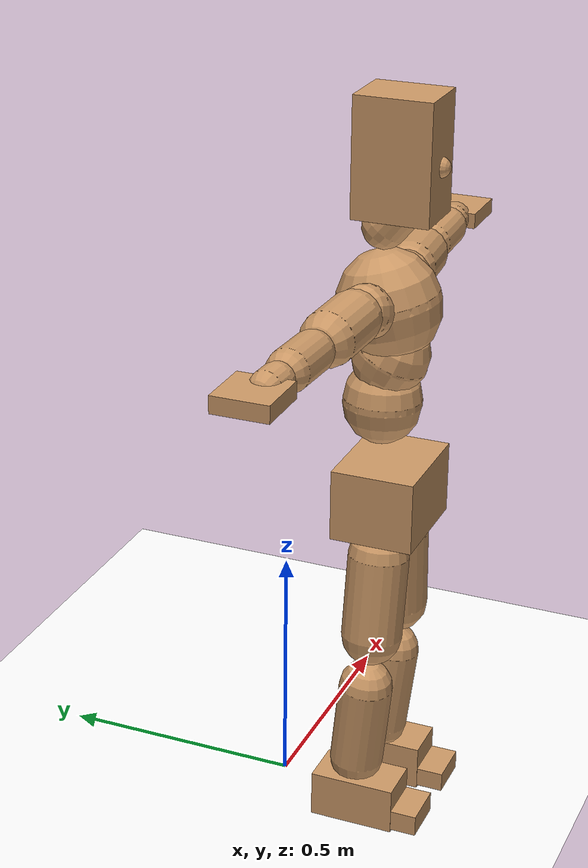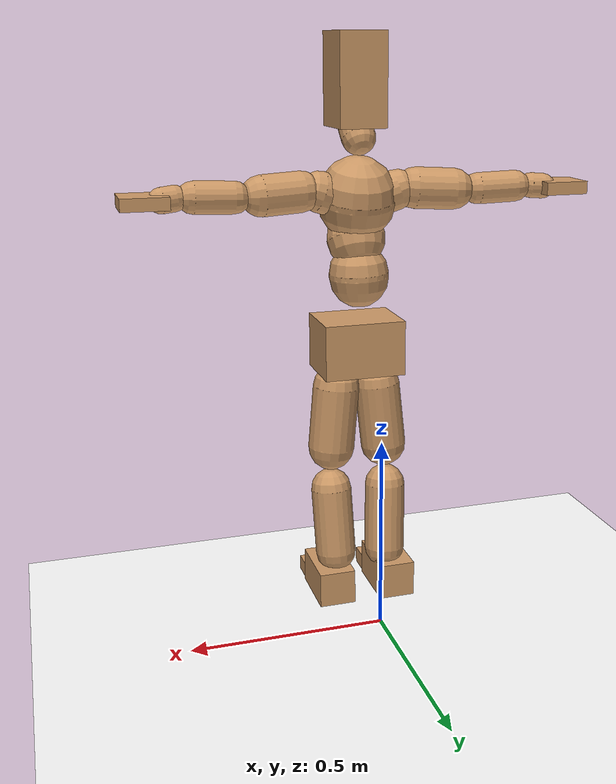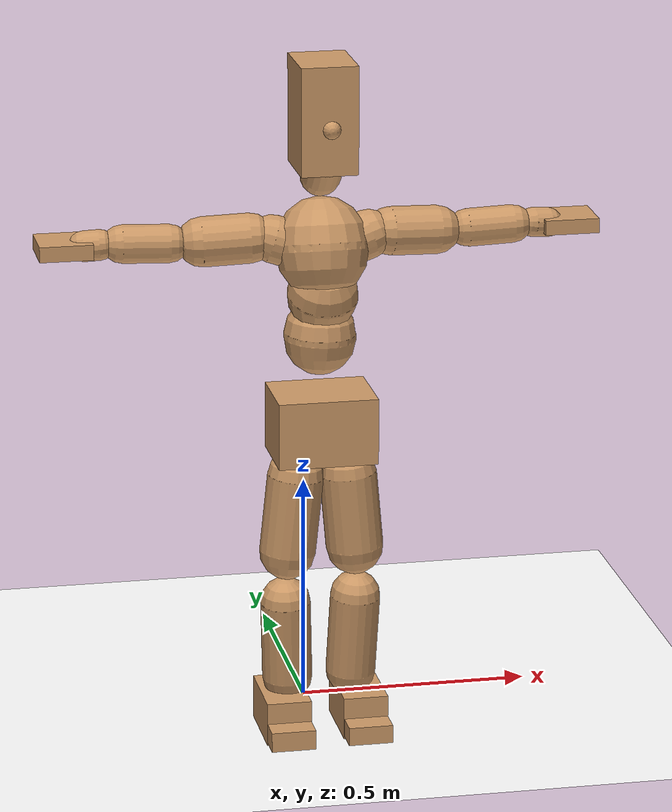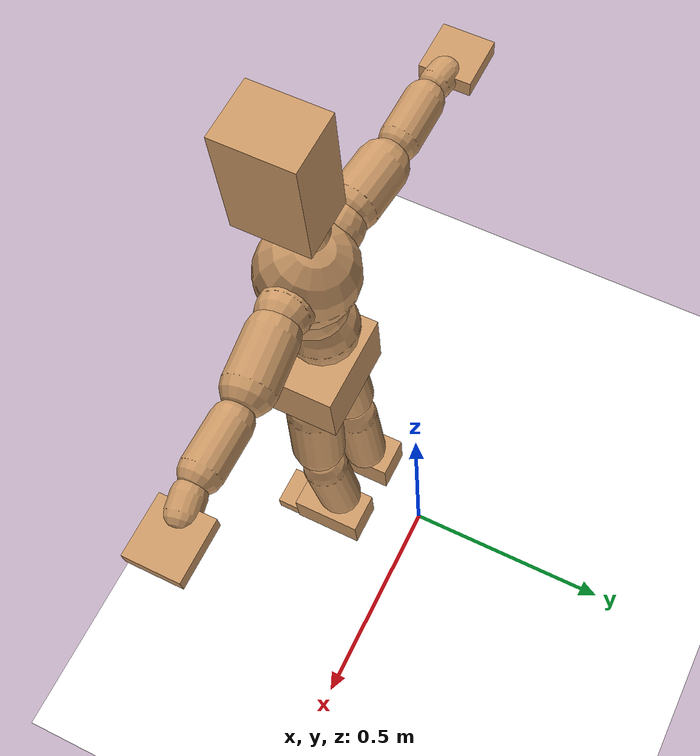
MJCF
<mujoco model="humanoid">
  <option integrator="implicitfast" />

  <visual>
    <global offwidth="1280" offheight="960" />
    <headlight active="1" ambient="0.34 0.34 0.34" diffuse="0.5 0.5 0.5" />
  </visual>

  <default>
    <joint damping="2" stiffness="2" armature="0.01" limited="true" solimplimit="0 .99 .01" />
    <geom condim="1" friction="0.7 0.005 0.0001" solimp=".99 .99 .003" solref="0.015 1" margin="0.001" rgba="0.8 0.6 .4 1" />
    <default class="smplcontact">
      <geom condim="3" friction="1. 0.005 0.0001" solref="0.015 1" solimp="0.98 0.98 0.001" priority="1" />
    </default>
    <default class="stiff_medium">
      <joint stiffness="10" />
    </default>
    <default class="stiff_medium_higher">
      <joint stiffness="50" />
    </default>
    <default class="stiff_high">
      <joint stiffness="100" />
    </default>
  </default>

  <asset>
    <texture type="skybox" builtin="gradient" rgb1="0.99 0.99 0.99" rgb2="0.608 0.828 0.892" width="100" />
    <texture builtin="flat" height="1278" mark="cross" markrgb="1 1 1" name="texgeom" random="0.01" rgb1="0.8 0.6 0.4" rgb2="0.8 0.6 0.4" type="cube" width="127" />
    <texture name="texplane" type="2d" builtin="checker" markrgb="1 1 1" rgb1="0.756 0.772 0.76" rgb2="0.6 0.6 0.6" width="100" height="100" />
    <material name="MatPlane" reflectance="0.5" texture="texplane" texrepeat="1 1" texuniform="true" />
    <material name="geom" texture="texgeom" texuniform="true" />
  </asset>

  <worldbody>
    <light name="tracking_light" pos="0 0 7" dir="0 0 -1" directional="true" cutoff="100" exponent="1" diffuse="1 1 1" specular="0.1 0.1 0.1" mode="trackcom" />
    <camera name="back" pos="0 3 2.4" xyaxes="-1 0 0 0 -1 2" mode="trackcom" />
    <camera name="side" pos="-3 0 2.4" xyaxes="0 -1 0 1 0 2" mode="trackcom" />
    <camera name="front_side" pos="-2.8 -2.8 0.8" xyaxes="0.5 -0.5 0 0.1 0.1 1" mode="trackcom" />
    <geom condim="3" name="floor" pos="0 0 0" rgba="1 1 1 1" size="100 100 .2" type="plane" material="MatPlane" />
    <body name="Pelvis" pos="-0.0018 -0.2233 0.714475" euler="90 0 0">
      <site name="Pelvis" size="0.01" />
      <freejoint name="Pelvis" />
      <geom type="box" pos="-0.0000 -0.0121 -0.0055" size="0.1069 0.0722 0.083" quat="1.0000 0.0000 0.0000 0.0000" density="3165.830099" name="Pelvis" />
      <body name="L_Hip" pos="0.052125 -0.06855 -0.0051">
        <joint name="L_Hip_x" type="hinge" pos="0 0 0" axis="1 0 0" stiffness="6.246094795918367" range="-160.0 22.92" class="stiff_medium" damping="8.291075045961078" armature="0.004891370984683404"/>
        <joint name="L_Hip_y" type="hinge" pos="0 0 0" axis="0 1 0" stiffness="6.283432346938776" range="-70.0 70.0" class="stiff_medium" damping="6.622206330553068" armature="0.006979245460609147"/>
        <joint name="L_Hip_z" type="hinge" pos="0 0 0" axis="0 0 1" stiffness="6.280236020408163" range="-28.65 90.0" class="stiff_medium" damping="5.540637852842338" armature="0.004888139190404855"/>
        <geom type="capsule" density="2040.816327" fromto="0.005175 -0.05625 -0.000675 0.02055 -0.22515 -0.0027" size="0.0615" name="L_Hip" />
        <body name="L_Knee" pos="0.025725 -0.2814 -0.003375">
          <joint name="L_Knee_x" type="hinge" pos="0 0 0" axis="1 0 0" range="-5.16 171.89" damping="4.62915338976834" armature="0.005182973512521489" stiffness="1.292034693877551"/>
          <joint name="L_Knee_y" type="hinge" pos="0 0 0" axis="0 1 0" range="-4.58 6.88" damping="5.46988473458819" armature="0.007381715461698141" stiffness="1.2666279591836735"/>
          <joint name="L_Knee_z" type="hinge" pos="0 0 0" axis="0 0 1" range="-6.88 4.58" damping="4.641672627872139" armature="0.005166231774225995" stiffness="1.3032422448979593"/>
          <geom type="capsule" density="1234.567901" fromto="-0.002025 -0.0597 -0.006525 -0.008175 -0.2388 -0.02625" size="0.0541" name="L_Knee" />
          <body name="L_Ankle" pos="-0.0102 -0.2985 -0.032775">
            <joint name="L_Ankle_x" type="hinge" pos="0 0 0" axis="1 0 0" range="-45.84 45.84" class="stiff_medium" damping="4.38526834577956" armature="0.007122436468331925" stiffness="7.5"/>
            <joint name="L_Ankle_y" type="hinge" pos="0 0 0" axis="0 1 0" range="-74.48 22.92" class="stiff_medium" damping="2.2090505910878844" armature="0.007229488168867751" stiffness="7.5"/>
            <joint name="L_Ankle_z" type="hinge" pos="0 0 0" axis="0 0 1" range="-4.58 4.58" class="stiff_medium" damping="4.627293284407394" armature="0.007930312274045103" stiffness="7.5"/>
            <geom type="box" pos="0.017475 -0.017925 0.01815" size="0.0483 0.0464 0.085" quat="1.0000 0.0000 0.0000 0.0000" density="449.071558" name="L_Ankle" class="smplcontact" />
            <body name="L_Toe" pos="0.0198 -0.04185 0.089475">
              <joint name="L_Toe_x" type="hinge" pos="0 0 0" axis="1 0 0" range="-91.67 22.92" armature="0.008336677887503377" damping="1.5814560905225958" stiffness="1.5"/>
              <joint name="L_Toe_y" type="hinge" pos="0 0 0" axis="0 1 0" range="-4.58 4.58" armature="0.008828055290798229" damping="1.6273956455759209" stiffness="1.5"/>
              <joint name="L_Toe_z" type="hinge" pos="0 0 0" axis="0 0 1" range="-4.58 4.58" armature="0.009821593951991977" damping="1.716530857746983" stiffness="1.5"/>
              <geom type="box" pos="-0.00225 0.004125 0.0186" size="0.0478 0.02 0.0496" quat="1.0000 0.0000 0.0000 0.0000" density="423.206892" name="L_Toe" class="smplcontact" />
            </body>
          </body>
        </body>
      </body>
      <body name="R_Hip" pos="-0.050775 -0.067875 -0.003225">
        <joint name="R_Hip_x" type="hinge" pos="0 0 0" axis="1 0 0" stiffness="6.246094795918367" range="-160.0 22.92" class="stiff_medium" damping="8.291075045961078" armature="0.004891370984683404"/>
        <joint name="R_Hip_y" type="hinge" pos="0 0 0" axis="0 1 0" stiffness="6.283432346938776" range="-70.0 70.0" class="stiff_medium" damping="6.622206330553068" armature="0.006979245460609147"/>
        <joint name="R_Hip_z" type="hinge" pos="0 0 0" axis="0 0 1" stiffness="6.280236020408163" range="-90.0 28.65" class="stiff_medium" damping="5.540637852842338" armature="0.004888139190404855"/>
        <geom type="capsule" density="2040.816327" fromto="-0.005775 -0.057375 -0.00135 -0.02295 -0.229575 -0.005325" size="0.0606" name="R_Hip" />
        <body name="R_Knee" pos="-0.028725 -0.28695 -0.006675">
          <joint name="R_Knee_x" type="hinge" pos="0 0 0" axis="1 0 0" range="-5.16 171.89" damping="4.62915338976834" armature="0.005182973512521489" stiffness="1.292034693877551"/>
          <joint name="R_Knee_y" type="hinge" pos="0 0 0" axis="0 1 0" range="-6.88 4.58" damping="5.46988473458819" armature="0.007381715461698141" stiffness="1.2666279591836735"/>
          <joint name="R_Knee_z" type="hinge" pos="0 0 0" axis="0 0 1" range="-4.58 6.88" damping="4.641672627872139" armature="0.005166231774225995" stiffness="1.3032422448979593"/>
          <geom type="capsule" density="1234.567901" fromto="0.0024 -0.059775 -0.006375 0.00945 -0.239025 -0.02535" size="0.0541" name="R_Knee" />
          <body name="R_Ankle" pos="0.01185 -0.2988 -0.031725">
            <joint name="R_Ankle_x" type="hinge" pos="0 0 0" axis="1 0 0" range="-45.84 45.84" class="stiff_medium" damping="4.38526834577956" armature="0.007122436468331925" stiffness="7.5"/>
            <joint name="R_Ankle_y" type="hinge" pos="0 0 0" axis="0 1 0" range="-22.92 74.48" class="stiff_medium" damping="2.2090505910878844" armature="0.007229488168867751" stiffness="7.5"/>
            <joint name="R_Ankle_z" type="hinge" pos="0 0 0" axis="0 0 1" range="-4.58 4.58" class="stiff_medium" damping="4.627293284407394" armature="0.007930312274045103" stiffness="7.5"/>
            <geom type="box" pos="-0.0159 -0.01305 0.0192" size="0.0483 0.0478 0.0865" quat="1.0000 0.0000 0.0000 0.0000" density="434.700981" name="R_Ankle" class="smplcontact" />
            <body name="R_Toe" pos="-0.01905 -0.036075 0.092475">
              <joint name="R_Toe_x" type="hinge" pos="0 0 0" axis="1 0 0" range="-91.67 22.92" armature="0.008336677887503377" damping="1.5814560905225958" stiffness="1.5"/>
              <joint name="R_Toe_y" type="hinge" pos="0 0 0" axis="0 1 0" range="-4.58 4.58" armature="0.008828055290798229" damping="1.6273956455759209" stiffness="1.5"/>
              <joint name="R_Toe_z" type="hinge" pos="0 0 0" axis="0 0 1" range="-4.58 4.58" armature="0.009821593951991977" damping="1.716530857746983" stiffness="1.5"/>
              <geom type="box" pos="0.00315 0.003375 0.017025" size="0.0479 0.0216 0.0493" quat="1.0000 0.0000 0.0000 0.0000" density="407.384095" name="R_Toe" class="smplcontact" />
            </body>
          </body>
        </body>
      </body>
      <body name="Torso" pos="-0.0025 0.109 -0.0267">
        <joint name="Torso_x" type="hinge" pos="0 0 0" axis="1 0 0" range="-25.78 57.3" class="stiff_medium" damping="13.296564125699913" armature="0.008717287887859698" stiffness="9.01394612244898"/>
        <joint name="Torso_y" type="hinge" pos="0 0 0" axis="0 1 0" range="-57.3 57.3" class="stiff_high" damping="11.857975578739207" armature="0.003844721181114158" stiffness="91.43158775510203"/>
        <joint name="Torso_z" type="hinge" pos="0 0 0" axis="0 0 1" range="-34.38 34.38" class="stiff_high" damping="16.19322021929785" armature="0.007045583299802337" stiffness="93.0442413043478"/>
        <geom type="capsule" density="2040.816327" fromto="0.0025 0.0608 0.0005 0.003 0.0743 0.0006" size="0.0769" name="Torso" />
        <body name="Spine" pos="0.0055 0.1352 0.0011">
          <joint name="Spine_x" type="hinge" pos="0 0 0" axis="1 0 0" stiffness="8.855082083333333" range="-25.78 57.3" class="stiff_medium" damping="13.076797677453992" armature="0.008582774445870413"/>
          <joint name="Spine_y" type="hinge" pos="0 0 0" axis="0 1 0" stiffness="8.966550425531915" range="-57.3 57.3" class="stiff_high" damping="4.670538649446806" armature="0.003801268715520681"/>
          <joint name="Spine_z" type="hinge" pos="0 0 0" axis="0 0 1" stiffness="17.399179999999998" range="-34.38 34.38" class="stiff_high" damping="8.612389288095054" armature="0.005920876830729191"/>
          <geom type="capsule" density="2040.816327" fromto="0.0007 0.0238 0.0114 0.0008 0.0291 0.014" size="0.0755" name="Spine" />
          <body name="Chest" pos="0.0015 0.0529 0.0254">
            <joint name="Chest_x" type="hinge" pos="0 0 0" axis="1 0 0" stiffness="8.445605217391304" range="-25.78 57.3" class="stiff_medium" damping="12.725283601188012" armature="0.00852160981625543"/>
            <joint name="Chest_y" type="hinge" pos="0 0 0" axis="0 1 0" stiffness="7.416513142857141" range="-57.3 57.3" class="stiff_high" damping="4.235867490218071" armature="0.003780114777548562"/>
            <joint name="Chest_z" type="hinge" pos="0 0 0" axis="0 0 1" stiffness="17.461715111111108" range="-34.38 34.38" class="stiff_high" damping="8.26531611861849" armature="0.005433748608980238"/>
            <geom type="capsule" density="2040.816327" fromto="-0.0009 0.0682 -0.0173 -0.001 0.0833 -0.0212" size="0.1002" name="Chest" />
            <body name="Neck" pos="-0.0028 0.2139 -0.0429">
              <joint name="Neck_x" type="hinge" pos="0 0 0" axis="1 0 0" range="-28.65 57.3" class="stiff_medium_higher" damping="10.000000000000002" armature="0.010000000000000005" stiffness="50.0"/>
              <joint name="Neck_y" type="hinge" pos="0 0 0" axis="0 1 0" range="-40.11 40.11" class="stiff_medium_higher" damping="10.0" armature="0.01" stiffness="50.0"/>
              <joint name="Neck_z" type="hinge" pos="0 0 0" axis="0 0 1" range="-40.11 40.11" class="stiff_medium_higher" damping="9.999999999999996" armature="0.009999999999999993" stiffness="50.0"/>
              <geom type="capsule" density="1000" fromto="0.001 0.013 0.0103 0.0041 0.052 0.0411" size="0.0436" name="Neck" />
              <body name="Head" pos="0.0052 0.065 0.0513">
                <joint name="Head_x" type="hinge" pos="0 0 0" axis="1 0 0" range="-28.65 57.3" class="stiff_medium_higher" damping="2.0000000000000053" armature="0.010000000000000054" stiffness="50.0"/>
                <joint name="Head_y" type="hinge" pos="0 0 0" axis="0 1 0" range="-40.11 40.11" class="stiff_medium_higher" damping="2.0" armature="0.01" stiffness="50.0"/>
                <joint name="Head_z" type="hinge" pos="0 0 0" axis="0 0 1" range="-40.11 40.11" class="stiff_medium_higher" damping="2.000000000000006" armature="0.010000000000000064" stiffness="50.0"/>
                <geom type="box" pos="-0.0042 0.0876 -0.0116" size="0.0606 0.1154 0.076" quat="1.0000 0.0000 0.0000 0.0000" density="1018.069894" name="Head" />
                <geom type="capsule" name="nose" size="0.02 0.01" pos="0 0.07 0.05" quat="1 0 0 0" mass="0" contype="0" conaffinity="0" />
              </body>
            </body>
            <body name="L_Thorax" pos="0.052205 0.0806262 -0.0225912">
              <joint name="L_Thorax_x" type="hinge" pos="0 0 0" axis="1 0 0" range="-10.89 4.58" class="stiff_medium_higher" damping="10.75216101934471" armature="0.0054925344912440275" stiffness="26.310478061224497"/>
              <joint name="L_Thorax_y" type="hinge" pos="0 0 0" axis="0 1 0" range="-28.65 17.19" class="stiff_medium_higher" damping="8.656507675839675" armature="0.0035990909186137975" stiffness="26.025712755102038"/>
              <joint name="L_Thorax_z" type="hinge" pos="0 0 0" axis="0 0 1" range="-31.51 40.11" class="stiff_medium_higher" damping="8.654936190408645" armature="0.0035973494554525543" stiffness="26.02885867346939"/>
              <geom type="capsule" density="1000" fromto="0.0120575 0.00404125 -0.0011925 0.04823 0.016165 -0.00470375" size="0.0521" name="L_Thorax" />
              <body name="L_Shoulder" pos="0.0602875 0.0202062 -0.00589625">
                <joint name="L_Shoulder_x" type="hinge" pos="0 0 0" axis="1 0 0" range="-97.4 97.4" class="stiff_medium" damping="3.435570611371462" armature="0.006181474178058814" stiffness="5.3039961224489796"/>
                <joint name="L_Shoulder_y" type="hinge" pos="0 0 0" axis="0 1 0" range="-108.86 80.21" class="stiff_medium" damping="2.619467278569037" armature="0.00364693025105719" stiffness="5.226319999999999"/>
                <joint name="L_Shoulder_z" type="hinge" pos="0 0 0" axis="0 0 1" range="-97.4 85.94" class="stiff_medium" damping="2.6197349169276216" armature="0.0036444798930498406" stiffness="5.230902653061225"/>
                <geom type="capsule" density="1000" fromto="0.0343837 -0.0017225 -0.00364375 0.137601 -0.0067575 -0.014575" size="0.0517" name="L_Shoulder" />
                <body name="L_Elbow" pos="0.171985 -0.00848 -0.0182187">
                  <joint name="L_Elbow_x" type="hinge" pos="0 0 0" axis="1 0 0" range="-17.19 4.58" damping="3.1785577743547226" armature="0.0073936623788689124" stiffness="1.0931772653061227"/>
                  <joint name="L_Elbow_y" type="hinge" pos="0 0 0" axis="0 1 0" range="-180.0 17.19" damping="2.3033030607353275" armature="0.003885042260915372" stiffness="1.0924370204081633"/>
                  <joint name="L_Elbow_z" type="hinge" pos="0 0 0" axis="0 0 1" range="-100.84 4.58" damping="2.3008114328593745" armature="0.0038721783452337235" stiffness="1.0936961632653062"/>
                  <geom type="capsule" density="1000" fromto="0.0329925 0.0011925 -0.0001325 0.132102 0.00477 -0.00059625" size="0.0405" name="L_Elbow" />
                  <body name="L_Wrist" pos="0.165095 0.0059625 -0.000795">
                    <joint name="L_Wrist_x" type="hinge" pos="0 0 0" axis="1 0 0" range="-180.0 22.92" armature="0.008001427855743422" damping="1.4109622696560224" stiffness="1.2440370408163264"/>
                    <joint name="L_Wrist_y" type="hinge" pos="0 0 0" axis="0 1 0" range="-17.19 17.19" armature="0.004879471429003469" damping="1.0965644446974518" stiffness="1.2321555714285712"/>
                    <joint name="L_Wrist_z" type="hinge" pos="0 0 0" axis="0 0 1" range="-22.92 22.92" armature="0.004698864868438912" damping="1.0781698402208966" stiffness="1.2369478979591837"/>
                    <geom type="capsule" density="1000" fromto="0.01113 -0.00106 -0.0019875 0.04452 -0.00430625 -0.00795" size="0.0318" name="L_Wrist" class="smplcontact" />
                    <body name="L_Hand" pos="0.05565 -0.0054325 -0.00987125">
                      <joint name="L_Hand_x" type="hinge" pos="0 0 0" axis="1 0 0" range="-17.19 17.19" armature="0.009755552996204151" damping="1.6078618449167985" stiffness="1.3249990612244895"/>
                      <joint name="L_Hand_y" type="hinge" pos="0 0 0" axis="0 1 0" range="-51.57 51.57" armature="0.007043747166286085" damping="1.366232647764046" stiffness="1.3249990408163264"/>
                      <joint name="L_Hand_z" type="hinge" pos="0 0 0" axis="0 0 1" range="-91.67 91.67" armature="0.006320878329522937" damping="1.2942300773617927" stiffness="1.3249989999999998"/>
                      <geom type="box" pos="0.0326612 0.0006625 -0.0038425" size="0.0585 0.0158 0.0538" quat="1.0000 0.0000 0.0000 0.0000" density="400.552564" name="L_Hand" class="smplcontact" />
                    </body>
                  </body>
                </body>
              </body>
            </body>
            <body name="R_Thorax" pos="-0.0541925 0.078705 -0.0255725">
              <joint name="R_Thorax_x" type="hinge" pos="0 0 0" axis="1 0 0" range="-10.89 4.58" class="stiff_medium_higher" damping="10.75216101934471" armature="0.0054925344912440275" stiffness="26.310478061224497"/>
              <joint name="R_Thorax_y" type="hinge" pos="0 0 0" axis="0 1 0" range="-17.19 28.65" class="stiff_medium_higher" damping="8.656507675839675" armature="0.0035990909186137975" stiffness="26.025712755102038"/>
              <joint name="R_Thorax_z" type="hinge" pos="0 0 0" axis="0 0 1" range="-40.11 31.51" class="stiff_medium_higher" damping="8.654936190408645" armature="0.0035973494554525543" stiffness="26.02885867346939"/>
              <geom type="capsule" density="1000" fromto="-0.01272 0.00430625 -0.0011925 -0.05088 0.017225 -0.00483625" size="0.0511" name="R_Thorax" />
              <body name="R_Shoulder" pos="-0.0636 0.0215975 -0.00602875">
                <joint name="R_Shoulder_x" type="hinge" pos="0 0 0" axis="1 0 0" range="-97.4 97.4" class="stiff_medium" damping="3.435570611371462" armature="0.006181474178058814" stiffness="5.3039961224489796"/>
                <joint name="R_Shoulder_y" type="hinge" pos="0 0 0" axis="0 1 0" range="-80.21 108.86" class="stiff_medium" damping="2.619467278569037" armature="0.00364693025105719" stiffness="5.226319999999999"/>
                <joint name="R_Shoulder_z" type="hinge" pos="0 0 0" axis="0 0 1" range="-85.94 97.4" class="stiff_medium" damping="2.6197349169276216" armature="0.0036444798930498406" stiffness="5.230902653061225"/>
                <geom type="capsule" density="1000" fromto="-0.0335888 -0.00178875 -0.00284875 -0.134488 -0.00708875 -0.0113288" size="0.0531" name="R_Shoulder" />
                <body name="R_Elbow" pos="-0.168076 -0.00881125 -0.0141775">
                  <joint name="R_Elbow_x" type="hinge" pos="0 0 0" axis="1 0 0" range="-17.19 4.58" damping="3.1785577743547226" armature="0.0073936623788689124" stiffness="1.0931772653061227"/>
                  <joint name="R_Elbow_y" type="hinge" pos="0 0 0" axis="0 1 0" range="-17.19 180.0" damping="2.3033030607353275" armature="0.003885042260915372" stiffness="1.0924370204081633"/>
                  <joint name="R_Elbow_z" type="hinge" pos="0 0 0" axis="0 0 1" range="-4.58 100.84" damping="2.3008114328593745" armature="0.0038721783452337235" stiffness="1.0936961632653062"/>
                  <geom type="capsule" density="1000" fromto="-0.0338538 0.00106 -0.00072875 -0.135282 0.0041075 -0.002915" size="0.0408" name="R_Elbow" />
                  <body name="R_Wrist" pos="-0.169136 0.0051675 -0.00371">
                    <joint name="R_Wrist_x" type="hinge" pos="0 0 0" axis="1 0 0" range="-180.0 22.92" armature="0.008001427855743422" damping="1.4109622696560224" stiffness="1.2440370408163264"/>
                    <joint name="R_Wrist_y" type="hinge" pos="0 0 0" axis="0 1 0" range="-17.19 17.19" armature="0.004879471429003469" damping="1.0965644446974518" stiffness="1.2321555714285712"/>
                    <joint name="R_Wrist_z" type="hinge" pos="0 0 0" axis="0 0 1" range="-22.92 22.92" armature="0.004698864868438912" damping="1.0781698402208966" stiffness="1.2369478979591837"/>
                    <geom type="capsule" density="1000" fromto="-0.0111962 -0.000795 -0.00139125 -0.0448512 -0.00324625 -0.00549875" size="0.0326" name="R_Wrist" class="smplcontact" />
                    <body name="R_Hand" pos="-0.0560475 -0.00404125 -0.00682375">
                      <joint name="R_Hand_x" type="hinge" pos="0 0 0" axis="1 0 0" range="-17.19 17.19" armature="0.009755552996204151" damping="1.6078618449167985" stiffness="1.3249990612244895"/>
                      <joint name="R_Hand_y" type="hinge" pos="0 0 0" axis="0 1 0" range="-51.57 51.57" armature="0.007043747166286085" damping="1.366232647764046" stiffness="1.3249990408163264"/>
                      <joint name="R_Hand_z" type="hinge" pos="0 0 0" axis="0 0 1" range="-91.67 91.67" armature="0.006320878329522937" damping="1.2942300773617927" stiffness="1.3249989999999998"/>
                      <geom type="box" pos="-0.0306075 -0.00059625 -0.00523375" size="0.0569 0.0164 0.0546" quat="1.0000 0.0000 0.0000 0.0000" density="403.679611" name="R_Hand" class="smplcontact" />
                    </body>
                  </body>
                </body>
              </body>
            </body>
          </body>
        </body>
      </body>
    </body>
  </worldbody>
  <actuator>
    <general name="L_Hip_x" joint="L_Hip_x" biastype="affine" gainprm="179.46908180691764" biasprm="-134.4938865848036 -112.42970632653059 -1.1054766727948104" ctrllimited="true" ctrlrange="-1 1" forcerange="-224.85941265306118 224.85941265306118" />
    <general name="L_Hip_y" joint="L_Hip_y" biastype="affine" gainprm="138.1798943032993" biasprm="0.0 -113.10178224489796 -1.3244412661106135" ctrllimited="true" ctrlrange="-1 1" forcerange="-226.20356448979592 226.20356448979592" />
    <general name="L_Hip_z" joint="L_Hip_z" biastype="affine" gainprm="117.04788889139031" biasprm="60.52160120932823 -113.04424836734694 -1.1081275705684677" ctrllimited="true" ctrlrange="-1 1" forcerange="-226.08849673469388 226.08849673469388" />
    <general name="L_Knee_x" joint="L_Knee_x" biastype="affine" gainprm="179.66355466802756" biasprm="169.1912141756579 -116.2831224489796 -1.157288347442085" ctrllimited="true" ctrlrange="-1 1" forcerange="-232.5662448979592 232.5662448979592" />
    <general name="L_Knee_y" joint="L_Knee_y" biastype="affine" gainprm="11.400491346869197" biasprm="2.2880567275566452 -113.99651632653062 -1.3674711836470475" ctrllimited="true" ctrlrange="-1 1" forcerange="-227.99303265306125 227.99303265306125" />
    <general name="L_Knee_z" joint="L_Knee_z" biastype="affine" gainprm="11.730044191831292" biasprm="-2.3541973508910967 -117.29180204081634 -1.1604181569680347" ctrllimited="true" ctrlrange="-1 1" forcerange="-234.58360408163267 234.58360408163267" />
    <general name="L_Ankle_x" joint="L_Ankle_x" biastype="affine" gainprm="54.00397771520855" biasprm="0.0 -67.5 -1.4617561152598533" ctrllimited="true" ctrlrange="-1 1" forcerange="-135.0 135.0" />
    <general name="L_Ankle_y" joint="L_Ankle_y" biastype="affine" gainprm="57.37333583618361" biasprm="-30.371346978579332 -67.5 -1.4727003940585897" ctrllimited="true" ctrlrange="-1 1" forcerange="-135.0 135.0" />
    <general name="L_Ankle_z" joint="L_Ankle_z" biastype="affine" gainprm="5.395685382540469" biasprm="0.0 -67.5 -1.5424310948024649" ctrllimited="true" ctrlrange="-1 1" forcerange="-135.0 135.0" />
    <general name="L_Toe_x" joint="L_Toe_x" biastype="affine" gainprm="53.999265326228155" biasprm="-32.39767424014474 -54.0 -0.6325824362090384" ctrllimited="true" ctrlrange="-1 1" forcerange="-108.0 108.0" />
    <general name="L_Toe_y" joint="L_Toe_y" biastype="affine" gainprm="4.3165483060323755" biasprm="0.0 -54.0 -0.6509582582303683" ctrllimited="true" ctrlrange="-1 1" forcerange="-108.0 108.0" />
    <general name="L_Toe_z" joint="L_Toe_z" biastype="affine" gainprm="4.3165483060323755" biasprm="0.0 -54.0 -0.6866123430987933" ctrllimited="true" ctrlrange="-1 1" forcerange="-108.0 108.0" />
    <general name="R_Hip_x" joint="R_Hip_x" biastype="affine" gainprm="179.46908180691764" biasprm="-134.4938865848036 -112.42970632653059 -1.1054766727948104" ctrllimited="true" ctrlrange="-1 1" forcerange="-224.85941265306118 224.85941265306118" />
    <general name="R_Hip_y" joint="R_Hip_y" biastype="affine" gainprm="138.1798943032993" biasprm="0.0 -113.10178224489796 -1.3244412661106135" ctrllimited="true" ctrlrange="-1 1" forcerange="-226.20356448979592 226.20356448979592" />
    <general name="R_Hip_z" joint="R_Hip_z" biastype="affine" gainprm="117.04788889139031" biasprm="-60.52160120932823 -113.04424836734694 -1.1081275705684677" ctrllimited="true" ctrlrange="-1 1" forcerange="-226.08849673469388 226.08849673469388" />
    <general name="R_Knee_x" joint="R_Knee_x" biastype="affine" gainprm="179.66355466802756" biasprm="169.1912141756579 -116.2831224489796 -1.157288347442085" ctrllimited="true" ctrlrange="-1 1" forcerange="-232.5662448979592 232.5662448979592" />
    <general name="R_Knee_y" joint="R_Knee_y" biastype="affine" gainprm="11.400491346869197" biasprm="-2.2880567275566452 -113.99651632653062 -1.3674711836470475" ctrllimited="true" ctrlrange="-1 1" forcerange="-227.99303265306125 227.99303265306125" />
    <general name="R_Knee_z" joint="R_Knee_z" biastype="affine" gainprm="11.730044191831292" biasprm="2.3541973508910967 -117.29180204081634 -1.1604181569680347" ctrllimited="true" ctrlrange="-1 1" forcerange="-234.58360408163267 234.58360408163267" />
    <general name="R_Ankle_x" joint="R_Ankle_x" biastype="affine" gainprm="54.00397771520855" biasprm="0.0 -67.5 -1.4617561152598533" ctrllimited="true" ctrlrange="-1 1" forcerange="-135.0 135.0" />
    <general name="R_Ankle_y" joint="R_Ankle_y" biastype="affine" gainprm="57.37333583618361" biasprm="30.371346978579332 -67.5 -1.4727003940585897" ctrllimited="true" ctrlrange="-1 1" forcerange="-135.0 135.0" />
    <general name="R_Ankle_z" joint="R_Ankle_z" biastype="affine" gainprm="5.395685382540469" biasprm="0.0 -67.5 -1.5424310948024649" ctrllimited="true" ctrlrange="-1 1" forcerange="-135.0 135.0" />
    <general name="R_Toe_x" joint="R_Toe_x" biastype="affine" gainprm="53.999265326228155" biasprm="-32.39767424014474 -54.0 -0.6325824362090384" ctrllimited="true" ctrlrange="-1 1" forcerange="-108.0 108.0" />
    <general name="R_Toe_y" joint="R_Toe_y" biastype="affine" gainprm="4.3165483060323755" biasprm="0.0 -54.0 -0.6509582582303683" ctrllimited="true" ctrlrange="-1 1" forcerange="-108.0 108.0" />
    <general name="R_Toe_z" joint="R_Toe_z" biastype="affine" gainprm="4.3165483060323755" biasprm="0.0 -54.0 -0.6866123430987933" ctrllimited="true" ctrlrange="-1 1" forcerange="-108.0 108.0" />
    <general name="Torso_x" joint="Torso_x" biastype="affine" gainprm="156.84477639727098" biasprm="59.505866057318 -216.33470693877553 -3.5457504335199768" ctrllimited="true" ctrlrange="-1 1" forcerange="-324.5020604081633 324.5020604081633" />
    <general name="Torso_y" joint="Torso_y" biastype="affine" gainprm="219.45197455967397" biasprm="0.0 -219.43581061224486 -2.3715951157478417" ctrllimited="true" ctrlrange="-1 1" forcerange="-329.1537159183673 329.1537159183673" />
    <general name="Torso_z" joint="Torso_z" biastype="affine" gainprm="133.99357690475964" biasprm="0.0 -223.30617913043474 -3.23864404385957" ctrllimited="true" ctrlrange="-1 1" forcerange="-334.9592686956521 334.9592686956521" />
    <general name="Spine_x" joint="Spine_x" biastype="affine" gainprm="154.08050486134445" biasprm="58.457119802955894 -212.52197 -3.4871460473210645" ctrllimited="true" ctrlrange="-1 1" forcerange="-318.782955 318.782955" />
    <general name="Spine_y" joint="Spine_y" biastype="affine" gainprm="215.21306193898633" biasprm="0.0 -215.19721021276595 -2.335269324723403" ctrllimited="true" ctrlrange="-1 1" forcerange="-322.7958153191489 322.7958153191489" />
    <general name="Spine_z" joint="Spine_z" biastype="affine" gainprm="125.28332386438697" biasprm="0.0 -208.79016 -2.870796429365018" ctrllimited="true" ctrlrange="-1 1" forcerange="-313.18523999999996 313.18523999999996" />
    <general name="Chest_x" joint="Chest_x" biastype="affine" gainprm="146.95551136725376" biasprm="55.753944611168 -202.69452521739132 -3.3934089603168034" ctrllimited="true" ctrlrange="-1 1" forcerange="-304.04178782608693 304.04178782608693" />
    <general name="Chest_y" joint="Chest_y" biastype="affine" gainprm="178.00942688507038" biasprm="0.0 -177.9963154285714 -2.1179337451090356" ctrllimited="true" ctrlrange="-1 1" forcerange="-266.9944731428571 266.9944731428571" />
    <general name="Chest_z" joint="Chest_z" biastype="affine" gainprm="125.7336098306353" biasprm="0.0 -209.5405813333333 -2.75510537287283" ctrllimited="true" ctrlrange="-1 1" forcerange="-314.31087199999996 314.31087199999996" />
    <general name="Neck_x" joint="Neck_x" biastype="affine" gainprm="27.00198885760427" biasprm="9.000662952534757 -36.0 -0.8000000000000003" ctrllimited="true" ctrlrange="-1 1" forcerange="-72.0 72.0" />
    <general name="Neck_y" joint="Neck_y" biastype="affine" gainprm="25.20185626709732" biasprm="0.0 -36.0 -0.8" ctrllimited="true" ctrlrange="-1 1" forcerange="-72.0 72.0" />
    <general name="Neck_z" joint="Neck_z" biastype="affine" gainprm="25.20185626709732" biasprm="0.0 -36.0 -0.7999999999999998" ctrllimited="true" ctrlrange="-1 1" forcerange="-72.0 72.0" />
    <general name="Head_x" joint="Head_x" biastype="affine" gainprm="18.001325905069514" biasprm="6.000441968356505 -24.0 -0.8000000000000022" ctrllimited="true" ctrlrange="-1 1" forcerange="-48.0 48.0" />
    <general name="Head_y" joint="Head_y" biastype="affine" gainprm="16.801237511398213" biasprm="0.0 -24.0 -0.8" ctrllimited="true" ctrlrange="-1 1" forcerange="-48.0 48.0" />
    <general name="Head_z" joint="Head_z" biastype="affine" gainprm="16.801237511398213" biasprm="0.0 -24.0 -0.8000000000000025" ctrllimited="true" ctrlrange="-1 1" forcerange="-48.0 48.0" />
    <general name="L_Thorax_x" joint="L_Thorax_x" biastype="affine" gainprm="8.524671780005175" biasprm="-3.4770962464015946 -63.14514734693879 -0.8601728815475769" ctrllimited="true" ctrlrange="-1 1" forcerange="-126.29029469387758 126.29029469387758" />
    <general name="L_Thorax_y" joint="L_Thorax_y" biastype="affine" gainprm="24.98652465153687" biasprm="-6.246631162884218 -62.461710612244886 -0.692520614067174" ctrllimited="true" ctrlrange="-1 1" forcerange="-124.92342122448977 124.92342122448977" />
    <general name="L_Thorax_z" joint="L_Thorax_z" biastype="affine" gainprm="39.04343825747016" biasprm="4.688265414887508 -62.46926081632654 -0.6923948952326916" ctrllimited="true" ctrlrange="-1 1" forcerange="-124.93852163265308 124.93852163265308" />
    <general name="L_Shoulder_x" joint="L_Shoulder_x" biastype="affine" gainprm="43.279353003673734" biasprm="0.0 -25.459181387755102 -0.9161521630323899" ctrllimited="true" ctrlrange="-1 1" forcerange="-50.918362775510204 50.918362775510204" />
    <general name="L_Shoulder_y" joint="L_Shoulder_y" biastype="affine" gainprm="41.39112503423586" biasprm="-6.272045973612193 -25.086336 -0.6985246076184098" ctrllimited="true" ctrlrange="-1 1" forcerange="-50.172672 50.172672" />
    <general name="L_Shoulder_z" joint="L_Shoulder_z" biastype="affine" gainprm="40.171909368365355" biasprm="-2.511018224945282 -25.108332734693878 -0.6985959778473658" ctrllimited="true" ctrlrange="-1 1" forcerange="-50.216665469387756 50.216665469387756" />
    <general name="L_Elbow_x" joint="L_Elbow_x" biastype="affine" gainprm="7.476509558353197" biasprm="-4.330674576519699 -39.35438155102042 -0.5085692438967556" ctrllimited="true" ctrlrange="-1 1" forcerange="-78.70876310204083 78.70876310204083" />
    <general name="L_Elbow_y" joint="L_Elbow_y" biastype="affine" gainprm="67.67545257136767" biasprm="-55.87626367028943 -39.327732734693875 -0.36852848971765245" ctrllimited="true" ctrlrange="-1 1" forcerange="-78.65546546938775 78.65546546938775" />
    <general name="L_Elbow_z" joint="L_Elbow_z" biastype="affine" gainprm="36.22176204255759" biasprm="-33.07443382865295 -39.373061877551024 -0.36812982925749993" ctrllimited="true" ctrlrange="-1 1" forcerange="-78.74612375510205 78.74612375510205" />
    <general name="L_Wrist_x" joint="L_Wrist_x" biastype="affine" gainprm="13.217727298647333" biasprm="-10.231818470685607 -7.464222244897958 -0.564384907862409" ctrllimited="true" ctrlrange="-1 1" forcerange="-14.928444489795917 14.928444489795917" />
    <general name="L_Wrist_y" joint="L_Wrist_y" biastype="affine" gainprm="2.2180434007032876" biasprm="0.0 -7.392933428571427 -0.43862577787898077" ctrllimited="true" ctrlrange="-1 1" forcerange="-14.785866857142855 14.785866857142855" />
    <general name="L_Wrist_z" joint="L_Wrist_z" biastype="affine" gainprm="2.9688936318338586" biasprm="0.0 -7.421687387755102 -0.43126793608835867" ctrllimited="true" ctrlrange="-1 1" forcerange="-14.843374775510204 14.843374775510204" />
    <general name="L_Hand_x" joint="L_Hand_x" biastype="affine" gainprm="2.38517399250132" biasprm="0.0 -7.949994367346937 -0.6431447379667194" ctrllimited="true" ctrlrange="-1 1" forcerange="-15.899988734693874 15.899988734693874" />
    <general name="L_Hand_y" joint="L_Hand_y" biastype="affine" gainprm="7.155521867291758" biasprm="0.0 -7.949994244897958 -0.5464930591056184" ctrllimited="true" ctrlrange="-1 1" forcerange="-15.899988489795916 15.899988489795916" />
    <general name="L_Hand_z" joint="L_Hand_z" biastype="affine" gainprm="12.7195398365005" biasprm="0.0 -7.9499939999999985 -0.5176920309447172" ctrllimited="true" ctrlrange="-1 1" forcerange="-15.899987999999997 15.899987999999997" />
    <general name="R_Thorax_x" joint="R_Thorax_x" biastype="affine" gainprm="8.524671780005175" biasprm="-3.4770962464015946 -63.14514734693879 -0.8601728815475769" ctrllimited="true" ctrlrange="-1 1" forcerange="-126.29029469387758 126.29029469387758" />
    <general name="R_Thorax_y" joint="R_Thorax_y" biastype="affine" gainprm="24.98652465153687" biasprm="6.246631162884214 -62.461710612244886 -0.692520614067174" ctrllimited="true" ctrlrange="-1 1" forcerange="-124.92342122448977 124.92342122448977" />
    <general name="R_Thorax_z" joint="R_Thorax_z" biastype="affine" gainprm="39.04343825747016" biasprm="-4.688265414887508 -62.46926081632654 -0.6923948952326916" ctrllimited="true" ctrlrange="-1 1" forcerange="-124.93852163265308 124.93852163265308" />
    <general name="R_Shoulder_x" joint="R_Shoulder_x" biastype="affine" gainprm="43.279353003673734" biasprm="0.0 -25.459181387755102 -0.9161521630323899" ctrllimited="true" ctrlrange="-1 1" forcerange="-50.918362775510204 50.918362775510204" />
    <general name="R_Shoulder_y" joint="R_Shoulder_y" biastype="affine" gainprm="41.39112503423586" biasprm="6.272045973612193 -25.086336 -0.6985246076184098" ctrllimited="true" ctrlrange="-1 1" forcerange="-50.172672 50.172672" />
    <general name="R_Shoulder_z" joint="R_Shoulder_z" biastype="affine" gainprm="40.171909368365355" biasprm="2.5110182249452766 -25.108332734693878 -0.6985959778473658" ctrllimited="true" ctrlrange="-1 1" forcerange="-50.216665469387756 50.216665469387756" />
    <general name="R_Elbow_x" joint="R_Elbow_x" biastype="affine" gainprm="7.476509558353197" biasprm="-4.330674576519699 -39.35438155102042 -0.5085692438967556" ctrllimited="true" ctrlrange="-1 1" forcerange="-78.70876310204083 78.70876310204083" />
    <general name="R_Elbow_y" joint="R_Elbow_y" biastype="affine" gainprm="67.67545257136767" biasprm="55.87626367028943 -39.327732734693875 -0.36852848971765245" ctrllimited="true" ctrlrange="-1 1" forcerange="-78.65546546938775 78.65546546938775" />
    <general name="R_Elbow_z" joint="R_Elbow_z" biastype="affine" gainprm="36.22176204255759" biasprm="33.07443382865295 -39.373061877551024 -0.36812982925749993" ctrllimited="true" ctrlrange="-1 1" forcerange="-78.74612375510205 78.74612375510205" />
    <general name="R_Wrist_x" joint="R_Wrist_x" biastype="affine" gainprm="13.217727298647333" biasprm="-10.231818470685607 -7.464222244897958 -0.564384907862409" ctrllimited="true" ctrlrange="-1 1" forcerange="-14.928444489795917 14.928444489795917" />
    <general name="R_Wrist_y" joint="R_Wrist_y" biastype="affine" gainprm="2.2180434007032876" biasprm="0.0 -7.392933428571427 -0.43862577787898077" ctrllimited="true" ctrlrange="-1 1" forcerange="-14.785866857142855 14.785866857142855" />
    <general name="R_Wrist_z" joint="R_Wrist_z" biastype="affine" gainprm="2.9688936318338586" biasprm="0.0 -7.421687387755102 -0.43126793608835867" ctrllimited="true" ctrlrange="-1 1" forcerange="-14.843374775510204 14.843374775510204" />
    <general name="R_Hand_x" joint="R_Hand_x" biastype="affine" gainprm="2.38517399250132" biasprm="0.0 -7.949994367346937 -0.6431447379667194" ctrllimited="true" ctrlrange="-1 1" forcerange="-15.899988734693874 15.899988734693874" />
    <general name="R_Hand_y" joint="R_Hand_y" biastype="affine" gainprm="7.155521867291758" biasprm="0.0 -7.949994244897958 -0.5464930591056184" ctrllimited="true" ctrlrange="-1 1" forcerange="-15.899988489795916 15.899988489795916" />
    <general name="R_Hand_z" joint="R_Hand_z" biastype="affine" gainprm="12.7195398365005" biasprm="0.0 -7.9499939999999985 -0.5176920309447172" ctrllimited="true" ctrlrange="-1 1" forcerange="-15.899987999999997 15.899987999999997" />
  </actuator>
  <contact>
    <exclude body1="Torso" body2="Chest" />
    <exclude body1="Head" body2="Chest" />
    <exclude body1="R_Knee" body2="R_Toe" />
    <exclude body1="R_Knee" body2="L_Ankle" />
    <exclude body1="R_Knee" body2="L_Toe" />
    <exclude body1="L_Knee" body2="L_Toe" />
    <exclude body1="L_Knee" body2="R_Ankle" />
    <exclude body1="L_Knee" body2="R_Toe" />
    <exclude body1="L_Shoulder" body2="Chest" />
    <exclude body1="R_Shoulder" body2="Chest" />
  </contact>
  <sensor>
    <framelinvel name="sensor_Pelvis_framelinvel" objtype="xbody" objname="Pelvis" />
    <framelinvel name="sensor_L_Hip_framelinvel" objtype="xbody" objname="L_Hip" />
    <framelinvel name="sensor_L_Knee_framelinvel" objtype="xbody" objname="L_Knee" />
    <framelinvel name="sensor_L_Ankle_framelinvel" objtype="xbody" objname="L_Ankle" />
    <framelinvel name="sensor_L_Toe_framelinvel" objtype="xbody" objname="L_Toe" />
    <framelinvel name="sensor_R_Hip_framelinvel" objtype="xbody" objname="R_Hip" />
    <framelinvel name="sensor_R_Knee_framelinvel" objtype="xbody" objname="R_Knee" />
    <framelinvel name="sensor_R_Ankle_framelinvel" objtype="xbody" objname="R_Ankle" />
    <framelinvel name="sensor_R_Toe_framelinvel" objtype="xbody" objname="R_Toe" />
    <framelinvel name="sensor_Torso_framelinvel" objtype="xbody" objname="Torso" />
    <framelinvel name="sensor_Spine_framelinvel" objtype="xbody" objname="Spine" />
    <framelinvel name="sensor_Chest_framelinvel" objtype="xbody" objname="Chest" />
    <framelinvel name="sensor_Neck_framelinvel" objtype="xbody" objname="Neck" />
    <framelinvel name="sensor_Head_framelinvel" objtype="xbody" objname="Head" />
    <framelinvel name="sensor_L_Thorax_framelinvel" objtype="xbody" objname="L_Thorax" />
    <framelinvel name="sensor_L_Shoulder_framelinvel" objtype="xbody" objname="L_Shoulder" />
    <framelinvel name="sensor_L_Elbow_framelinvel" objtype="xbody" objname="L_Elbow" />
    <framelinvel name="sensor_L_Wrist_framelinvel" objtype="xbody" objname="L_Wrist" />
    <framelinvel name="sensor_L_Hand_framelinvel" objtype="xbody" objname="L_Hand" />
    <framelinvel name="sensor_R_Thorax_framelinvel" objtype="xbody" objname="R_Thorax" />
    <framelinvel name="sensor_R_Shoulder_framelinvel" objtype="xbody" objname="R_Shoulder" />
    <framelinvel name="sensor_R_Elbow_framelinvel" objtype="xbody" objname="R_Elbow" />
    <framelinvel name="sensor_R_Wrist_framelinvel" objtype="xbody" objname="R_Wrist" />
    <framelinvel name="sensor_R_Hand_framelinvel" objtype="xbody" objname="R_Hand" />
    <frameangvel name="sensor_Pelvis_frameangvel" objtype="xbody" objname="Pelvis" />
    <frameangvel name="sensor_L_Hip_frameangvel" objtype="xbody" objname="L_Hip" />
    <frameangvel name="sensor_L_Knee_frameangvel" objtype="xbody" objname="L_Knee" />
    <frameangvel name="sensor_L_Ankle_frameangvel" objtype="xbody" objname="L_Ankle" />
    <frameangvel name="sensor_L_Toe_frameangvel" objtype="xbody" objname="L_Toe" />
    <frameangvel name="sensor_R_Hip_frameangvel" objtype="xbody" objname="R_Hip" />
    <frameangvel name="sensor_R_Knee_frameangvel" objtype="xbody" objname="R_Knee" />
    <frameangvel name="sensor_R_Ankle_frameangvel" objtype="xbody" objname="R_Ankle" />
    <frameangvel name="sensor_R_Toe_frameangvel" objtype="xbody" objname="R_Toe" />
    <frameangvel name="sensor_Torso_frameangvel" objtype="xbody" objname="Torso" />
    <frameangvel name="sensor_Spine_frameangvel" objtype="xbody" objname="Spine" />
    <frameangvel name="sensor_Chest_frameangvel" objtype="xbody" objname="Chest" />
    <frameangvel name="sensor_Neck_frameangvel" objtype="xbody" objname="Neck" />
    <frameangvel name="sensor_Head_frameangvel" objtype="xbody" objname="Head" />
    <frameangvel name="sensor_L_Thorax_frameangvel" objtype="xbody" objname="L_Thorax" />
    <frameangvel name="sensor_L_Shoulder_frameangvel" objtype="xbody" objname="L_Shoulder" />
    <frameangvel name="sensor_L_Elbow_frameangvel" objtype="xbody" objname="L_Elbow" />
    <frameangvel name="sensor_L_Wrist_frameangvel" objtype="xbody" objname="L_Wrist" />
    <frameangvel name="sensor_L_Hand_frameangvel" objtype="xbody" objname="L_Hand" />
    <frameangvel name="sensor_R_Thorax_frameangvel" objtype="xbody" objname="R_Thorax" />
    <frameangvel name="sensor_R_Shoulder_frameangvel" objtype="xbody" objname="R_Shoulder" />
    <frameangvel name="sensor_R_Elbow_frameangvel" objtype="xbody" objname="R_Elbow" />
    <frameangvel name="sensor_R_Wrist_frameangvel" objtype="xbody" objname="R_Wrist" />
    <frameangvel name="sensor_R_Hand_frameangvel" objtype="xbody" objname="R_Hand" />
    <subtreelinvel name="Chest_subtreelinvel" body="Chest" />
    <gyro name="Pelvis_gyro" site="Pelvis" />
  </sensor>
</mujoco>
